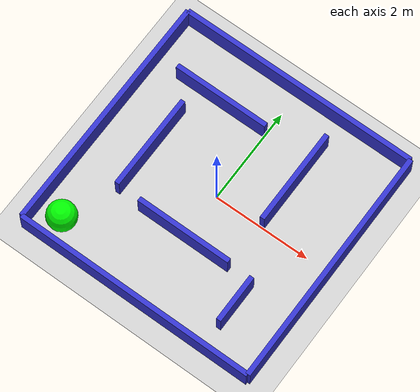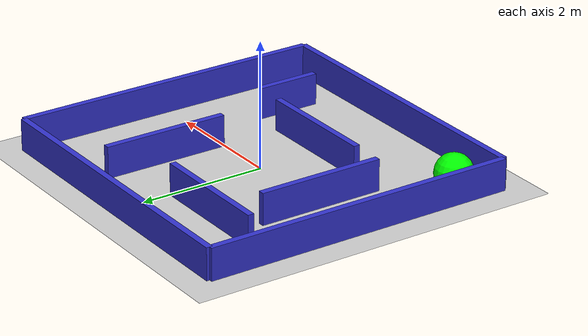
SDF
<sdf version="1.6">
 <world name="maze_world">
  <physics name="1ms" type="ode">
   <max_step_size>0.001</max_step_size>
   <real_time_factor>1.0</real_time_factor>
   <real_time_update_rate>1000.0</real_time_update_rate>
  </physics>
  <include><uri>model://ground_plane</uri></include>
  <include><uri>model://sun</uri></include>
  <model name="wall_bottom">
   <static>true</static>
   <pose>0 -2.5 0.25 0 0 0</pose>
   <link name="link">
    <collision name="collision"><geometry><box><size>5.0 0.1 0.5</size></box></geometry></collision>
    <visual name="visual">
     <geometry><box><size>5.0 0.1 0.5</size></box></geometry>
     <material><ambient>0.2 0.2 0.8 1</ambient><diffuse>0.2 0.2 0.8 1</diffuse></material>
    </visual>
   </link>
  </model>
  <model name="wall_top">
   <static>true</static>
   <pose>0 2.5 0.25 0 0 0</pose>
   <link name="link">
    <collision name="collision"><geometry><box><size>5.0 0.1 0.5</size></box></geometry></collision>
    <visual name="visual">
     <geometry><box><size>5.0 0.1 0.5</size></box></geometry>
     <material><ambient>0.2 0.2 0.8 1</ambient><diffuse>0.2 0.2 0.8 1</diffuse></material>
    </visual>
   </link>
  </model>
  <model name="wall_left">
   <static>true</static>
   <pose>-2.5 0 0.25 0 0 0</pose>
   <link name="link">
    <collision name="collision"><geometry><box><size>0.1 5.0 0.5</size></box></geometry></collision>
    <visual name="visual">
     <geometry><box><size>0.1 5.0 0.5</size></box></geometry>
     <material><ambient>0.2 0.2 0.8 1</ambient><diffuse>0.2 0.2 0.8 1</diffuse></material>
    </visual>
   </link>
  </model>
  <model name="wall_right">
   <static>true</static>
   <pose>2.5 0 0.25 0 0 0</pose>
   <link name="link">
    <collision name="collision"><geometry><box><size>0.1 5.0 0.5</size></box></geometry></collision>
    <visual name="visual">
     <geometry><box><size>0.1 5.0 0.5</size></box></geometry>
     <material><ambient>0.2 0.2 0.8 1</ambient><diffuse>0.2 0.2 0.8 1</diffuse></material>
    </visual>
   </link>
  </model>
  <model name="wall_1">
   <static>true</static>
   <pose>-1.0 1.5 0.25 0 0 0</pose>
   <link name="link">
    <collision name="collision"><geometry><box><size>2.0 0.1 0.5</size></box></geometry></collision>
    <visual name="visual">
     <geometry><box><size>2.0 0.1 0.5</size></box></geometry>
     <material><ambient>0.2 0.2 0.8 1</ambient><diffuse>0.2 0.2 0.8 1</diffuse></material>
    </visual>
   </link>
  </model>
  <model name="wall_2">
   <static>true</static>
   <pose>1.0 1.0 0.25 0 0 0</pose>
   <link name="link">
    <collision name="collision"><geometry><box><size>0.1 2.0 0.5</size></box></geometry></collision>
    <visual name="visual">
     <geometry><box><size>0.1 2.0 0.5</size></box></geometry>
     <material><ambient>0.2 0.2 0.8 1</ambient><diffuse>0.2 0.2 0.8 1</diffuse></material>
    </visual>
   </link>
  </model>
  <model name="wall_3">
   <static>true</static>
   <pose>-1.5 0.0 0.25 0 0 0</pose>
   <link name="link">
    <collision name="collision"><geometry><box><size>0.1 2.0 0.5</size></box></geometry></collision>
    <visual name="visual">
     <geometry><box><size>0.1 2.0 0.5</size></box></geometry>
     <material><ambient>0.2 0.2 0.8 1</ambient><diffuse>0.2 0.2 0.8 1</diffuse></material>
    </visual>
   </link>
  </model>
  <model name="wall_4">
   <static>true</static>
   <pose>0.0 -1.0 0.25 0 0 0</pose>
   <link name="link">
    <collision name="collision"><geometry><box><size>2.0 0.1 0.5</size></box></geometry></collision>
    <visual name="visual">
     <geometry><box><size>2.0 0.1 0.5</size></box></geometry>
     <material><ambient>0.2 0.2 0.8 1</ambient><diffuse>0.2 0.2 0.8 1</diffuse></material>
    </visual>
   </link>
  </model>
  <model name="wall_5">
   <static>true</static>
   <pose>1.5 -1.5 0.25 0 0 0</pose>
   <link name="link">
    <collision name="collision"><geometry><box><size>0.1 1.0 0.5</size></box></geometry></collision>
    <visual name="visual">
     <geometry><box><size>0.1 1.0 0.5</size></box></geometry>
     <material><ambient>0.2 0.2 0.8 1</ambient><diffuse>0.2 0.2 0.8 1</diffuse></material>
    </visual>
   </link>
  </model>
  <model name="goal">
   <static>true</static>
   <pose>-2.0 -2.0 0.2 0 0 0</pose>
   <link name="link">
    <collision name="collision">
     <geometry><sphere><radius>0.3</radius></sphere></geometry>
     <surface><contact><collide_without_contact>true</collide_without_contact></contact></surface>
    </collision>
    <visual name="visual">
     <geometry><sphere><radius>0.3</radius></sphere></geometry>
     <material><ambient>0 1 0 1</ambient><diffuse>0 1 0 1</diffuse></material>
    </visual>
   </link>
  </model>
 </world>
</sdf>
